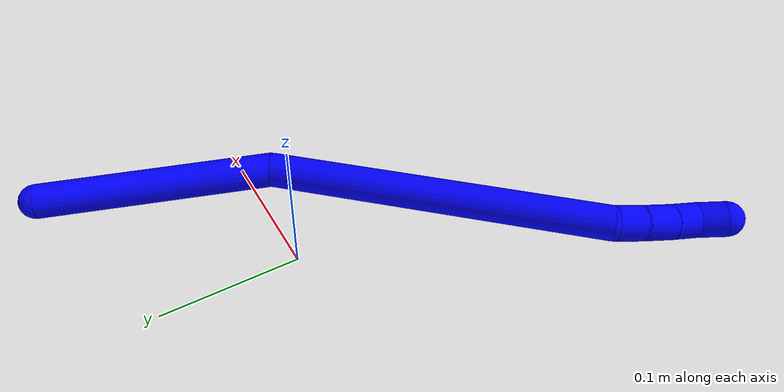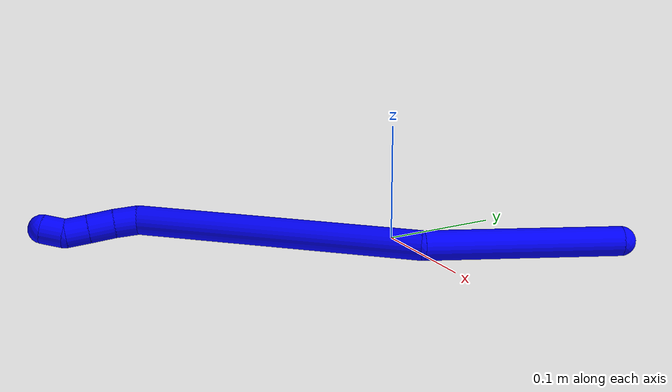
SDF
<sdf version="1.7">
 <world name="default">
  <plugin name="TubeGeneratorPlugin" filename="libtube_generator_plugin.so"/>
  <model name="photoneo_s_sensor">
   <static>1</static>
   <pose>0 0 2 1.57079 1.57079 3.14159</pose>
   <link name="link">
    <inertial><mass>0.1</mass></inertial>
    <sensor name="sensor" type="depth">
     <update_rate>30</update_rate>
     <camera>
      <horizontal_fov>1.22</horizontal_fov>
      <image><width>1920</width><height>1200</height><format>B8G8R8</format></image>
      <clip><near>0.1</near><far>4</far></clip>
      <depth_camera><output>points</output></depth_camera>
     </camera>
     <plugin name="camera_plugin" filename="libgazebo_ros_depth_camera.so">
      <baseline>0.2</baseline>
      <alwaysOn>1</alwaysOn>
      <updateRate>0.0</updateRate>
      <cameraName>camera_ir</cameraName>
      <imageTopicName>/camera/color/image_raw</imageTopicName>
      <cameraInfoTopicName>/camera/color/camera_info</cameraInfoTopicName>
      <depthImageTopicName>/camera/depth/image_raw</depthImageTopicName>
      <depthImageCameraInfoTopicName>/camera/depth/camera_info</depthImageCameraInfoTopicName>
      <pointCloudTopicName>/camera/depth/points</pointCloudTopicName>
      <frameName>fr_optical</frameName>
      <pointCloudCutoff>0.1</pointCloudCutoff>
      <pointCloudCutoffMax>2.0</pointCloudCutoffMax>
      <distortionK1>0</distortionK1>
      <distortionK2>0</distortionK2>
      <distortionK3>0</distortionK3>
      <distortionT1>0</distortionT1>
      <distortionT2>0</distortionT2>
      <CxPrime>0</CxPrime>
      <Cx>0</Cx>
      <Cy>0</Cy>
      <focalLength>0</focalLength>
      <hackBaseline>0</hackBaseline>
     </plugin>
    </sensor>
   </link>
  </model>
  <gravity>0 0 -9.8</gravity>
  <magnetic_field>6e-06 2.3e-05 -4.2e-05</magnetic_field>
  <atmosphere type="adiabatic"/>
  <physics name="default_physics" default="0" type="ode">
   <max_step_size>0.003</max_step_size>
   <real_time_factor>1</real_time_factor>
   <real_time_update_rate>1000</real_time_update_rate>
   <max_contacts>10000</max_contacts>
   <ode>
    <solver>
     <type>quick</type>
     <iters>100</iters>
     <sor>1.3</sor>
     <use_dynamic_moi_rescaling>0</use_dynamic_moi_rescaling>
    </solver>
    <constraints>
     <contact_max_correcting_vel>0</contact_max_correcting_vel>
     <contact_surface_layer>0.001</contact_surface_layer>
     <cfm>0</cfm>
     <erp>0.2</erp>
    </constraints>
   </ode>
  </physics>
  <scene><ambient>0.4 0.4 0.4 1</ambient><background>0.7 0.7 0.7 1</background><shadows>0</shadows></scene>
  <audio><device>default</device></audio>
  <spherical_coordinates>
   <surface_model>EARTH_WGS84</surface_model>
   <latitude_deg>0</latitude_deg>
   <longitude_deg>0</longitude_deg>
   <elevation>0</elevation>
   <heading_deg>0</heading_deg>
  </spherical_coordinates>
  <model name="bin">
   <static>1</static>
   <link name="bottom">
    <collision name="collision-bottom">
     <pose>0 0 -0.01 0 -0 0</pose>
     <geometry><box><size>0.8 0.6 0.02</size></box></geometry>
     <surface>
      <friction><ode><mu>100</mu><mu2>100</mu2></ode></friction>
      <contact><collide_bitmask>65535</collide_bitmask></contact>
     </surface>
    </collision>
   </link>
   <link name="west_wall">
    <collision name="collision-west_wall">
     <pose>-0.41 0 0.1 0 -0 0</pose>
     <geometry><box><size>0.02 0.6 0.2</size></box></geometry>
     <surface>
      <friction><ode><mu>100</mu><mu2>100</mu2></ode></friction>
      <contact><collide_bitmask>65535</collide_bitmask></contact>
     </surface>
    </collision>
   </link>
   <link name="east_wall">
    <collision name="collision-east_wall">
     <pose>0.41 0 0.1 0 -0 0</pose>
     <geometry><box><size>0.02 0.6 0.2</size></box></geometry>
     <surface>
      <friction><ode><mu>100</mu><mu2>100</mu2></ode></friction>
      <contact><collide_bitmask>65535</collide_bitmask></contact>
     </surface>
    </collision>
   </link>
   <link name="south_wall">
    <collision name="collision-south_wall">
     <pose>0 -0.31 0.1 0 -0 0</pose>
     <geometry><box><size>0.8 0.02 0.2</size></box></geometry>
     <surface>
      <friction><ode><mu>100</mu><mu2>100</mu2></ode></friction>
      <contact><collide_bitmask>65535</collide_bitmask></contact>
     </surface>
    </collision>
   </link>
   <link name="north_wall">
    <collision name="collision-north_wall">
     <pose>0 0.31 0.1 0 -0 0</pose>
     <geometry><box><size>0.8 0.02 0.2</size></box></geometry>
     <surface>
      <friction><ode><mu>100</mu><mu2>100</mu2></ode></friction>
      <contact><collide_bitmask>65535</collide_bitmask></contact>
     </surface>
    </collision>
   </link>
  </model>
  <model name="1">
   <static>0</static>
   <link name="1">
    <collision name="collision-cylinder-e_1_1_4">
     <pose>-0.015475 -0.058086 0.059757 0.771221 -0.183606 -0.074707</pose>
     <geometry><cylinder><radius>0.0125</radius><length>0.169521</length></cylinder></geometry>
     <surface>
      <friction><ode><mu>1.16</mu><mu2>1.16</mu2><slip1>0</slip1><slip2>0</slip2></ode></friction>
      <contact><ode><kp>1e+06</kp><kd>1</kd><max_vel>0</max_vel><min_depth>0.001</min_depth></ode></contact>
     </surface>
    </collision>
    <visual name="visual-cylinder-e_1_1_4">
     <pose>-0.015475 -0.058086 0.059757 0.771221 -0.183606 -0.074707</pose>
     <geometry><cylinder><radius>0.0125</radius><length>0.169521</length></cylinder></geometry>
     <material><ambient>0 0 1 1</ambient></material>
    </visual>
    <collision name="collision-cylinder-e_2_4_5">
     <pose>-0.098008 -0.184043 0.198022 0.712858 -0.573668 -0.218775</pose>
     <geometry><cylinder><radius>0.0125</radius><length>0.247117</length></cylinder></geometry>
     <surface>
      <friction><ode><mu>1.16</mu><mu2>1.16</mu2><slip1>0</slip1><slip2>0</slip2></ode></friction>
      <contact><ode><kp>1e+06</kp><kd>1</kd><max_vel>0</max_vel><min_depth>0.001</min_depth></ode></contact>
     </surface>
    </collision>
    <visual name="visual-cylinder-e_2_4_5">
     <pose>-0.098008 -0.184043 0.198022 0.712858 -0.573668 -0.218775</pose>
     <geometry><cylinder><radius>0.0125</radius><length>0.247117</length></cylinder></geometry>
     <material><ambient>0 0 1 1</ambient></material>
    </visual>
    <collision name="collision-cylinder-e_3_5_6">
     <pose>-0.167658 -0.259826 0.282616 0.915104 -0.254131 -0.125647</pose>
     <geometry><cylinder><radius>0.0125</radius><length>0.020627</length></cylinder></geometry>
     <surface>
      <friction><ode><mu>1.16</mu><mu2>1.16</mu2><slip1>0</slip1><slip2>0</slip2></ode></friction>
      <contact><ode><kp>1e+06</kp><kd>1</kd><max_vel>0</max_vel><min_depth>0.001</min_depth></ode></contact>
     </surface>
    </collision>
    <visual name="visual-cylinder-e_3_5_6">
     <pose>-0.167658 -0.259826 0.282616 0.915104 -0.254131 -0.125647</pose>
     <geometry><cylinder><radius>0.0125</radius><length>0.020627</length></cylinder></geometry>
     <material><ambient>0 0 1 1</ambient></material>
    </visual>
    <collision name="collision-cylinder-e_4_6_7">
     <pose>-0.1723 -0.276927 0.295054 0.965936 -0.181452 -0.095341</pose>
     <geometry><cylinder><radius>0.0125</radius><length>0.022714</length></cylinder></geometry>
     <surface>
      <friction><ode><mu>1.16</mu><mu2>1.16</mu2><slip1>0</slip1><slip2>0</slip2></ode></friction>
      <contact><ode><kp>1e+06</kp><kd>1</kd><max_vel>0</max_vel><min_depth>0.001</min_depth></ode></contact>
     </surface>
    </collision>
    <visual name="visual-cylinder-e_4_6_7">
     <pose>-0.1723 -0.276927 0.295054 0.965936 -0.181452 -0.095341</pose>
     <geometry><cylinder><radius>0.0125</radius><length>0.022714</length></cylinder></geometry>
     <material><ambient>0 0 1 1</ambient></material>
    </visual>
    <collision name="collision-cylinder-e_5_7_8">
     <pose>-0.175821 -0.294153 0.307179 0.947915 -0.147597 -0.075812</pose>
     <geometry><cylinder><radius>0.0125</radius><length>0.020008</length></cylinder></geometry>
     <surface>
      <friction><ode><mu>1.16</mu><mu2>1.16</mu2><slip1>0</slip1><slip2>0</slip2></ode></friction>
      <contact><ode><kp>1e+06</kp><kd>1</kd><max_vel>0</max_vel><min_depth>0.001</min_depth></ode></contact>
     </surface>
    </collision>
    <visual name="visual-cylinder-e_5_7_8">
     <pose>-0.175821 -0.294153 0.307179 0.947915 -0.147597 -0.075812</pose>
     <geometry><cylinder><radius>0.0125</radius><length>0.020008</length></cylinder></geometry>
     <material><ambient>0 0 1 1</ambient></material>
    </visual>
    <collision name="collision-cylinder-e_6_8_2">
     <pose>-0.181362 -0.307122 0.320649 0.569874 -0.418917 -0.12437</pose>
     <geometry><cylinder><radius>0.0125</radius><length>0.020013</length></cylinder></geometry>
     <surface>
      <friction><ode><mu>1.16</mu><mu2>1.16</mu2><slip1>0</slip1><slip2>0</slip2></ode></friction>
      <contact><ode><kp>1e+06</kp><kd>1</kd><max_vel>0</max_vel><min_depth>0.001</min_depth></ode></contact>
     </surface>
    </collision>
    <visual name="visual-cylinder-e_6_8_2">
     <pose>-0.181362 -0.307122 0.320649 0.569874 -0.418917 -0.12437</pose>
     <geometry><cylinder><radius>0.0125</radius><length>0.020013</length></cylinder></geometry>
     <material><ambient>0 0 1 1</ambient></material>
    </visual>
    <collision name="collision-sphere-2">
     <pose>-0.185432 -0.312054 0.328345 0 -0 0</pose>
     <geometry><sphere><radius>0.0125</radius></sphere></geometry>
     <surface>
      <friction><ode><mu>1.16</mu><mu2>1.16</mu2><slip1>0</slip1><slip2>0</slip2></ode></friction>
      <contact><ode><kp>1e+06</kp><kd>1</kd><max_vel>0</max_vel><min_depth>0.001</min_depth></ode></contact>
     </surface>
    </collision>
    <visual name="visual-sphere-2">
     <pose>-0.185432 -0.312054 0.328345 0 -0 0</pose>
     <geometry><sphere><radius>0.0125</radius></sphere></geometry>
     <material><ambient>0 0 1 1</ambient></material>
    </visual>
    <collision name="collision-sphere-4">
     <pose>-0.03095 -0.116172 0.119513 0 -0 0</pose>
     <geometry><sphere><radius>0.0125</radius></sphere></geometry>
     <surface>
      <friction><ode><mu>1.16</mu><mu2>1.16</mu2><slip1>0</slip1><slip2>0</slip2></ode></friction>
      <contact><ode><kp>1e+06</kp><kd>1</kd><max_vel>0</max_vel><min_depth>0.001</min_depth></ode></contact>
     </surface>
    </collision>
    <visual name="visual-sphere-4">
     <pose>-0.03095 -0.116172 0.119513 0 -0 0</pose>
     <geometry><sphere><radius>0.0125</radius></sphere></geometry>
     <material><ambient>0 0 1 1</ambient></material>
    </visual>
    <collision name="collision-sphere-1">
     <geometry><sphere><radius>0.0125</radius></sphere></geometry>
     <surface>
      <friction><ode><mu>1.16</mu><mu2>1.16</mu2><slip1>0</slip1><slip2>0</slip2></ode></friction>
      <contact><ode><kp>1e+06</kp><kd>1</kd><max_vel>0</max_vel><min_depth>0.001</min_depth></ode></contact>
     </surface>
    </collision>
    <visual name="visual-sphere-1">
     <geometry><sphere><radius>0.0125</radius></sphere></geometry>
     <material><ambient>0 0 1 1</ambient></material>
    </visual>
    <collision name="collision-sphere-8">
     <pose>-0.177292 -0.30219 0.312952 0 -0 0</pose>
     <geometry><sphere><radius>0.0125</radius></sphere></geometry>
     <surface>
      <friction><ode><mu>1.16</mu><mu2>1.16</mu2><slip1>0</slip1><slip2>0</slip2></ode></friction>
      <contact><ode><kp>1e+06</kp><kd>1</kd><max_vel>0</max_vel><min_depth>0.001</min_depth></ode></contact>
     </surface>
    </collision>
    <visual name="visual-sphere-8">
     <pose>-0.177292 -0.30219 0.312952 0 -0 0</pose>
     <geometry><sphere><radius>0.0125</radius></sphere></geometry>
     <material><ambient>0 0 1 1</ambient></material>
    </visual>
    <collision name="collision-sphere-5">
     <pose>-0.165065 -0.251914 0.27653 0 -0 0</pose>
     <geometry><sphere><radius>0.0125</radius></sphere></geometry>
     <surface>
      <friction><ode><mu>1.16</mu><mu2>1.16</mu2><slip1>0</slip1><slip2>0</slip2></ode></friction>
      <contact><ode><kp>1e+06</kp><kd>1</kd><max_vel>0</max_vel><min_depth>0.001</min_depth></ode></contact>
     </surface>
    </collision>
    <visual name="visual-sphere-5">
     <pose>-0.165065 -0.251914 0.27653 0 -0 0</pose>
     <geometry><sphere><radius>0.0125</radius></sphere></geometry>
     <material><ambient>0 0 1 1</ambient></material>
    </visual>
    <collision name="collision-sphere-6">
     <pose>-0.17025 -0.267738 0.288702 0 -0 0</pose>
     <geometry><sphere><radius>0.0125</radius></sphere></geometry>
     <surface>
      <friction><ode><mu>1.16</mu><mu2>1.16</mu2><slip1>0</slip1><slip2>0</slip2></ode></friction>
      <contact><ode><kp>1e+06</kp><kd>1</kd><max_vel>0</max_vel><min_depth>0.001</min_depth></ode></contact>
     </surface>
    </collision>
    <visual name="visual-sphere-6">
     <pose>-0.17025 -0.267738 0.288702 0 -0 0</pose>
     <geometry><sphere><radius>0.0125</radius></sphere></geometry>
     <material><ambient>0 0 1 1</ambient></material>
    </visual>
    <collision name="collision-sphere-7">
     <pose>-0.174349 -0.286116 0.301407 0 -0 0</pose>
     <geometry><sphere><radius>0.0125</radius></sphere></geometry>
     <surface>
      <friction><ode><mu>1.16</mu><mu2>1.16</mu2><slip1>0</slip1><slip2>0</slip2></ode></friction>
      <contact><ode><kp>1e+06</kp><kd>1</kd><max_vel>0</max_vel><min_depth>0.001</min_depth></ode></contact>
     </surface>
    </collision>
    <visual name="visual-sphere-7">
     <pose>-0.174349 -0.286116 0.301407 0 -0 0</pose>
     <geometry><sphere><radius>0.0125</radius></sphere></geometry>
     <material><ambient>0 0 1 1</ambient></material>
    </visual>
    <inertial>
     <pose>-0.082724 -0.158017 0.168318 0 -0 0</pose>
     <mass>0.5</mass>
     <inertia>
      <ixx>0.001173</ixx>
      <ixy>0</ixy>
      <ixz>0</ixz>
      <iyy>0.00105</iyy>
      <iyz>0</iyz>
      <izz>0.001774</izz>
     </inertia>
    </inertial>
   </link>
   <pose>0.130396 0.145245 0.012268 0.738175 -0.157332 -0.151766</pose>
  </model>
 </world>
</sdf>
